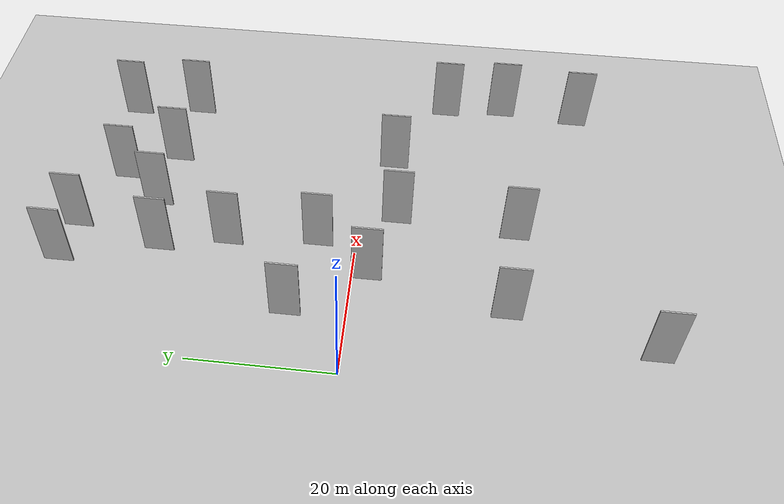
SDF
<?xml version="1.0" encoding="utf-8"?>

<sdf version="1.6">

   <world name="default">

      <gui fullscreen="0">

         <camera name="user_camera">

            <pose>-15 0 4.57585 0 0 0</pose>

            <view_controller>orbit</view_controller>

         </camera>

      </gui>

      <scene>

         <sky>

           <clouds>

             <speed>12</speed>

           </clouds>

         </sky>

         <ambient>0.4 0.4 0.4 1</ambient>

         <background>0.7 0.7 0.7 1</background>

         <shadows>1</shadows>

      </scene>

      <gravity>0 0 -9.8066</gravity>

      <magnetic_field>6e-06 2.3e-05 -4.2e-05</magnetic_field>

      <physics default="0" name="default_physics" type="ode">

         <ode>

            <solver>

               <type>quick</type>

               <iters>10</iters>

               <sor>1.0</sor>

               <use_dynamic_moi_rescaling>0</use_dynamic_moi_rescaling>

            </solver>

            <constraints>

               <cfm>0</cfm>

               <erp>0.2</erp>

               <contact_max_correcting_vel>100</contact_max_correcting_vel>

               <contact_surface_layer>0.001</contact_surface_layer>

            </constraints>

         </ode>

         <max_step_size>0.004</max_step_size>

         <real_time_factor>1</real_time_factor>

         <real_time_update_rate>250</real_time_update_rate>

      </physics>

      <light name="sun" type="directional">

         <cast_shadows>1</cast_shadows>

         <pose>0 0 10 0 0 0</pose>

         <diffuse>0.8 0.8 0.8 1</diffuse>

         <specular>0.2 0.2 0.2 1</specular>

         <attenuation>

            <range>1000</range>

            <constant>0.9</constant>

            <linear>0.01</linear>

            <quadratic>0.001</quadratic>

         </attenuation>

         <direction>-0.5 0.1 -0.9</direction>

      </light>

      <include>

         <name>ground_plane_1</name>

         <uri>model://HANNAS_ground_plane</uri>

         <pose>0 0 0  0 0 0</pose>

      </include>

      <include>

         <name>ground_plane_2</name>

         <uri>model://HANNAS_ground_plane</uri>

         <pose>100 0 0  0 0 0</pose>

      </include>

      <model name="HANNAS_wall_1">

         <static>1</static>

         <pose frame="">10.3924 38.5099 5.0 0.000000 0.000000 1.570796</pose>

         <link name="link">

            <pose frame="">0 0 5.00 0 0 0</pose>

            <collision name="collision">

               <geometry>

                  <box>

                     <size>4.00 0.2 10.00</size>

                  </box>

               </geometry>

               <max_contacts>10</max_contacts>

               <surface>

                  <contact>

                     <ode/>

                  </contact>

                  <bounce/>

                  <friction>

                     <torsional>

                        <ode/>

                     </torsional>

                     <ode/>

                  </friction>

               </surface>

            </collision>

            <visual name="visual">

               <cast_shadows>0</cast_shadows>

               <geometry>

                  <box>

                     <size>4.00 0.2 10.00</size>

                  </box>

               </geometry>

               <material>

                  <script>

                     <uri>model://HANNAS_wall/materials/scripts</uri>

                     <uri>model://HANNAS_wall/materials/textures</uri>

                     <name>vrc/HANNAS_wall</name>

                  </script>

               </material>

            </visual>

            <self_collide>0</self_collide>

            <enable_wind>0</enable_wind>

            <kinematic>0</kinematic>

         </link>

      </model>

      <model name="HANNAS_wall_2">

         <static>1</static>

         <pose frame="">26.3707 33.2354 5.0 0.000000 0.000000 1.570796</pose>

         <link name="link">

            <pose frame="">0 0 5.00 0 0 0</pose>

            <collision name="collision">

               <geometry>

                  <box>

                     <size>4.00 0.2 10.00</size>

                  </box>

               </geometry>

               <max_contacts>10</max_contacts>

               <surface>

                  <contact>

                     <ode/>

                  </contact>

                  <bounce/>

                  <friction>

                     <torsional>

                        <ode/>

                     </torsional>

                     <ode/>

                  </friction>

               </surface>

            </collision>

            <visual name="visual">

               <cast_shadows>0</cast_shadows>

               <geometry>

                  <box>

                     <size>4.00 0.2 10.00</size>

                  </box>

               </geometry>

               <material>

                  <script>

                     <uri>model://HANNAS_wall/materials/scripts</uri>

                     <uri>model://HANNAS_wall/materials/textures</uri>

                     <name>vrc/HANNAS_wall</name>

                  </script>

               </material>

            </visual>

            <self_collide>0</self_collide>

            <enable_wind>0</enable_wind>

            <kinematic>0</kinematic>

         </link>

      </model>

      <model name="HANNAS_wall_3">

         <static>1</static>

         <pose frame="">44.8564 -30.2030 5.0 0.000000 0.000000 1.570796</pose>

         <link name="link">

            <pose frame="">0 0 5.00 0 0 0</pose>

            <collision name="collision">

               <geometry>

                  <box>

                     <size>4.00 0.2 10.00</size>

                  </box>

               </geometry>

               <max_contacts>10</max_contacts>

               <surface>

                  <contact>

                     <ode/>

                  </contact>

                  <bounce/>

                  <friction>

                     <torsional>

                        <ode/>

                     </torsional>

                     <ode/>

                  </friction>

               </surface>

            </collision>

            <visual name="visual">

               <cast_shadows>0</cast_shadows>

               <geometry>

                  <box>

                     <size>4.00 0.2 10.00</size>

                  </box>

               </geometry>

               <material>

                  <script>

                     <uri>model://HANNAS_wall/materials/scripts</uri>

                     <uri>model://HANNAS_wall/materials/textures</uri>

                     <name>vrc/HANNAS_wall</name>

                  </script>

               </material>

            </visual>

            <self_collide>0</self_collide>

            <enable_wind>0</enable_wind>

            <kinematic>0</kinematic>

         </link>

      </model>

      <model name="HANNAS_wall_4">

         <static>1</static>

         <pose frame="">3.2372 -38.8629 5.0 0.000000 0.000000 1.570796</pose>

         <link name="link">

            <pose frame="">0 0 5.00 0 0 0</pose>

            <collision name="collision">

               <geometry>

                  <box>

                     <size>4.00 0.2 10.00</size>

                  </box>

               </geometry>

               <max_contacts>10</max_contacts>

               <surface>

                  <contact>

                     <ode/>

                  </contact>

                  <bounce/>

                  <friction>

                     <torsional>

                        <ode/>

                     </torsional>

                     <ode/>

                  </friction>

               </surface>

            </collision>

            <visual name="visual">

               <cast_shadows>0</cast_shadows>

               <geometry>

                  <box>

                     <size>4.00 0.2 10.00</size>

                  </box>

               </geometry>

               <material>

                  <script>

                     <uri>model://HANNAS_wall/materials/scripts</uri>

                     <uri>model://HANNAS_wall/materials/textures</uri>

                     <name>vrc/HANNAS_wall</name>

                  </script>

               </material>

            </visual>

            <self_collide>0</self_collide>

            <enable_wind>0</enable_wind>

            <kinematic>0</kinematic>

         </link>

      </model>

      <model name="HANNAS_wall_5">

         <static>1</static>

         <pose frame="">44.8452 -11.1819 5.0 0.000000 0.000000 1.570796</pose>

         <link name="link">

            <pose frame="">0 0 5.00 0 0 0</pose>

            <collision name="collision">

               <geometry>

                  <box>

                     <size>4.00 0.2 10.00</size>

                  </box>

               </geometry>

               <max_contacts>10</max_contacts>

               <surface>

                  <contact>

                     <ode/>

                  </contact>

                  <bounce/>

                  <friction>

                     <torsional>

                        <ode/>

                     </torsional>

                     <ode/>

                  </friction>

               </surface>

            </collision>

            <visual name="visual">

               <cast_shadows>0</cast_shadows>

               <geometry>

                  <box>

                     <size>4.00 0.2 10.00</size>

                  </box>

               </geometry>

               <material>

                  <script>

                     <uri>model://HANNAS_wall/materials/scripts</uri>

                     <uri>model://HANNAS_wall/materials/textures</uri>

                     <name>vrc/HANNAS_wall</name>

                  </script>

               </material>

            </visual>

            <self_collide>0</self_collide>

            <enable_wind>0</enable_wind>

            <kinematic>0</kinematic>

         </link>

      </model>

      <model name="HANNAS_wall_6">

         <static>1</static>

         <pose frame="">22.1076 -5.4832 5.0 0.000000 0.000000 1.570796</pose>

         <link name="link">

            <pose frame="">0 0 5.00 0 0 0</pose>

            <collision name="collision">

               <geometry>

                  <box>

                     <size>4.00 0.2 10.00</size>

                  </box>

               </geometry>

               <max_contacts>10</max_contacts>

               <surface>

                  <contact>

                     <ode/>

                  </contact>

                  <bounce/>

                  <friction>

                     <torsional>

                        <ode/>

                     </torsional>

                     <ode/>

                  </friction>

               </surface>

            </collision>

            <visual name="visual">

               <cast_shadows>0</cast_shadows>

               <geometry>

                  <box>

                     <size>4.00 0.2 10.00</size>

                  </box>

               </geometry>

               <material>

                  <script>

                     <uri>model://HANNAS_wall/materials/scripts</uri>

                     <uri>model://HANNAS_wall/materials/textures</uri>

                     <name>vrc/HANNAS_wall</name>

                  </script>

               </material>

            </visual>

            <self_collide>0</self_collide>

            <enable_wind>0</enable_wind>

            <kinematic>0</kinematic>

         </link>

      </model>

      <model name="HANNAS_wall_7">

         <static>1</static>

         <pose frame="">11.8245 -2.3541 5.0 0.000000 0.000000 1.570796</pose>

         <link name="link">

            <pose frame="">0 0 5.00 0 0 0</pose>

            <collision name="collision">

               <geometry>

                  <box>

                     <size>4.00 0.2 10.00</size>

                  </box>

               </geometry>

               <max_contacts>10</max_contacts>

               <surface>

                  <contact>

                     <ode/>

                  </contact>

                  <bounce/>

                  <friction>

                     <torsional>

                        <ode/>

                     </torsional>

                     <ode/>

                  </friction>

               </surface>

            </collision>

            <visual name="visual">

               <cast_shadows>0</cast_shadows>

               <geometry>

                  <box>

                     <size>4.00 0.2 10.00</size>

                  </box>

               </geometry>

               <material>

                  <script>

                     <uri>model://HANNAS_wall/materials/scripts</uri>

                     <uri>model://HANNAS_wall/materials/textures</uri>

                     <name>vrc/HANNAS_wall</name>

                  </script>

               </material>

            </visual>

            <self_collide>0</self_collide>

            <enable_wind>0</enable_wind>

            <kinematic>0</kinematic>

         </link>

      </model>

      <model name="HANNAS_wall_8">

         <static>1</static>

         <pose frame="">32.7218 -4.2951 5.0 0.000000 0.000000 1.570796</pose>

         <link name="link">

            <pose frame="">0 0 5.00 0 0 0</pose>

            <collision name="collision">

               <geometry>

                  <box>

                     <size>4.00 0.2 10.00</size>

                  </box>

               </geometry>

               <max_contacts>10</max_contacts>

               <surface>

                  <contact>

                     <ode/>

                  </contact>

                  <bounce/>

                  <friction>

                     <torsional>

                        <ode/>

                     </torsional>

                     <ode/>

                  </friction>

               </surface>

            </collision>

            <visual name="visual">

               <cast_shadows>0</cast_shadows>

               <geometry>

                  <box>

                     <size>4.00 0.2 10.00</size>

                  </box>

               </geometry>

               <material>

                  <script>

                     <uri>model://HANNAS_wall/materials/scripts</uri>

                     <uri>model://HANNAS_wall/materials/textures</uri>

                     <name>vrc/HANNAS_wall</name>

                  </script>

               </material>

            </visual>

            <self_collide>0</self_collide>

            <enable_wind>0</enable_wind>

            <kinematic>0</kinematic>

         </link>

      </model>

      <model name="HANNAS_wall_9">

         <static>1</static>

         <pose frame="">20.9511 -21.5772 5.0 0.000000 0.000000 1.570796</pose>

         <link name="link">

            <pose frame="">0 0 5.00 0 0 0</pose>

            <collision name="collision">

               <geometry>

                  <box>

                     <size>4.00 0.2 10.00</size>

                  </box>

               </geometry>

               <max_contacts>10</max_contacts>

               <surface>

                  <contact>

                     <ode/>

                  </contact>

                  <bounce/>

                  <friction>

                     <torsional>

                        <ode/>

                     </torsional>

                     <ode/>

                  </friction>

               </surface>

            </collision>

            <visual name="visual">

               <cast_shadows>0</cast_shadows>

               <geometry>

                  <box>

                     <size>4.00 0.2 10.00</size>

                  </box>

               </geometry>

               <material>

                  <script>

                     <uri>model://HANNAS_wall/materials/scripts</uri>

                     <uri>model://HANNAS_wall/materials/textures</uri>

                     <name>vrc/HANNAS_wall</name>

                  </script>

               </material>

            </visual>

            <self_collide>0</self_collide>

            <enable_wind>0</enable_wind>

            <kinematic>0</kinematic>

         </link>

      </model>

      <model name="HANNAS_wall_10">

         <static>1</static>

         <pose frame="">39.9970 35.2018 5.0 0.000000 0.000000 1.570796</pose>

         <link name="link">

            <pose frame="">0 0 5.00 0 0 0</pose>

            <collision name="collision">

               <geometry>

                  <box>

                     <size>4.00 0.2 10.00</size>

                  </box>

               </geometry>

               <max_contacts>10</max_contacts>

               <surface>

                  <contact>

                     <ode/>

                  </contact>

                  <bounce/>

                  <friction>

                     <torsional>

                        <ode/>

                     </torsional>

                     <ode/>

                  </friction>

               </surface>

            </collision>

            <visual name="visual">

               <cast_shadows>0</cast_shadows>

               <geometry>

                  <box>

                     <size>4.00 0.2 10.00</size>

                  </box>

               </geometry>

               <material>

                  <script>

                     <uri>model://HANNAS_wall/materials/scripts</uri>

                     <uri>model://HANNAS_wall/materials/textures</uri>

                     <name>vrc/HANNAS_wall</name>

                  </script>

               </material>

            </visual>

            <self_collide>0</self_collide>

            <enable_wind>0</enable_wind>

            <kinematic>0</kinematic>

         </link>

      </model>

      <model name="HANNAS_wall_11">

         <static>1</static>

         <pose frame="">16.6034 37.6472 5.0 0.000000 0.000000 1.570796</pose>

         <link name="link">

            <pose frame="">0 0 5.00 0 0 0</pose>

            <collision name="collision">

               <geometry>

                  <box>

                     <size>4.00 0.2 10.00</size>

                  </box>

               </geometry>

               <max_contacts>10</max_contacts>

               <surface>

                  <contact>

                     <ode/>

                  </contact>

                  <bounce/>

                  <friction>

                     <torsional>

                        <ode/>

                     </torsional>

                     <ode/>

                  </friction>

               </surface>

            </collision>

            <visual name="visual">

               <cast_shadows>0</cast_shadows>

               <geometry>

                  <box>

                     <size>4.00 0.2 10.00</size>

                  </box>

               </geometry>

               <material>

                  <script>

                     <uri>model://HANNAS_wall/materials/scripts</uri>

                     <uri>model://HANNAS_wall/materials/textures</uri>

                     <name>vrc/HANNAS_wall</name>

                  </script>

               </material>

            </visual>

            <self_collide>0</self_collide>

            <enable_wind>0</enable_wind>

            <kinematic>0</kinematic>

         </link>

      </model>

      <model name="HANNAS_wall_12">

         <static>1</static>

         <pose frame="">41.1932 25.7647 5.0 0.000000 0.000000 1.570796</pose>

         <link name="link">

            <pose frame="">0 0 5.00 0 0 0</pose>

            <collision name="collision">

               <geometry>

                  <box>

                     <size>4.00 0.2 10.00</size>

                  </box>

               </geometry>

               <max_contacts>10</max_contacts>

               <surface>

                  <contact>

                     <ode/>

                  </contact>

                  <bounce/>

                  <friction>

                     <torsional>

                        <ode/>

                     </torsional>

                     <ode/>

                  </friction>

               </surface>

            </collision>

            <visual name="visual">

               <cast_shadows>0</cast_shadows>

               <geometry>

                  <box>

                     <size>4.00 0.2 10.00</size>

                  </box>

               </geometry>

               <material>

                  <script>

                     <uri>model://HANNAS_wall/materials/scripts</uri>

                     <uri>model://HANNAS_wall/materials/textures</uri>

                     <name>vrc/HANNAS_wall</name>

                  </script>

               </material>

            </visual>

            <self_collide>0</self_collide>

            <enable_wind>0</enable_wind>

            <kinematic>0</kinematic>

         </link>

      </model>

      <model name="HANNAS_wall_13">

         <static>1</static>

         <pose frame="">30.7187 26.7996 5.0 0.000000 0.000000 1.570796</pose>

         <link name="link">

            <pose frame="">0 0 5.00 0 0 0</pose>

            <collision name="collision">

               <geometry>

                  <box>

                     <size>4.00 0.2 10.00</size>

                  </box>

               </geometry>

               <max_contacts>10</max_contacts>

               <surface>

                  <contact>

                     <ode/>

                  </contact>

                  <bounce/>

                  <friction>

                     <torsional>

                        <ode/>

                     </torsional>

                     <ode/>

                  </friction>

               </surface>

            </collision>

            <visual name="visual">

               <cast_shadows>0</cast_shadows>

               <geometry>

                  <box>

                     <size>4.00 0.2 10.00</size>

                  </box>

               </geometry>

               <material>

                  <script>

                     <uri>model://HANNAS_wall/materials/scripts</uri>

                     <uri>model://HANNAS_wall/materials/textures</uri>

                     <name>vrc/HANNAS_wall</name>

                  </script>

               </material>

            </visual>

            <self_collide>0</self_collide>

            <enable_wind>0</enable_wind>

            <kinematic>0</kinematic>

         </link>

      </model>

      <model name="HANNAS_wall_14">

         <static>1</static>

         <pose frame="">5.0376 7.3091 5.0 0.000000 0.000000 1.570796</pose>

         <link name="link">

            <pose frame="">0 0 5.00 0 0 0</pose>

            <collision name="collision">

               <geometry>

                  <box>

                     <size>4.00 0.2 10.00</size>

                  </box>

               </geometry>

               <max_contacts>10</max_contacts>

               <surface>

                  <contact>

                     <ode/>

                  </contact>

                  <bounce/>

                  <friction>

                     <torsional>

                        <ode/>

                     </torsional>

                     <ode/>

                  </friction>

               </surface>

            </collision>

            <visual name="visual">

               <cast_shadows>0</cast_shadows>

               <geometry>

                  <box>

                     <size>4.00 0.2 10.00</size>

                  </box>

               </geometry>

               <material>

                  <script>

                     <uri>model://HANNAS_wall/materials/scripts</uri>

                     <uri>model://HANNAS_wall/materials/textures</uri>

                     <name>vrc/HANNAS_wall</name>

                  </script>

               </material>

            </visual>

            <self_collide>0</self_collide>

            <enable_wind>0</enable_wind>

            <kinematic>0</kinematic>

         </link>

      </model>

      <model name="HANNAS_wall_15">

         <static>1</static>

         <pose frame="">45.6737 -19.4851 5.0 0.000000 0.000000 1.570796</pose>

         <link name="link">

            <pose frame="">0 0 5.00 0 0 0</pose>

            <collision name="collision">

               <geometry>

                  <box>

                     <size>4.00 0.2 10.00</size>

                  </box>

               </geometry>

               <max_contacts>10</max_contacts>

               <surface>

                  <contact>

                     <ode/>

                  </contact>

                  <bounce/>

                  <friction>

                     <torsional>

                        <ode/>

                     </torsional>

                     <ode/>

                  </friction>

               </surface>

            </collision>

            <visual name="visual">

               <cast_shadows>0</cast_shadows>

               <geometry>

                  <box>

                     <size>4.00 0.2 10.00</size>

                  </box>

               </geometry>

               <material>

                  <script>

                     <uri>model://HANNAS_wall/materials/scripts</uri>

                     <uri>model://HANNAS_wall/materials/textures</uri>

                     <name>vrc/HANNAS_wall</name>

                  </script>

               </material>

            </visual>

            <self_collide>0</self_collide>

            <enable_wind>0</enable_wind>

            <kinematic>0</kinematic>

         </link>

      </model>

      <model name="HANNAS_wall_16">

         <static>1</static>

         <pose frame="">7.5658 -20.5745 5.0 0.000000 0.000000 1.570796</pose>

         <link name="link">

            <pose frame="">0 0 5.00 0 0 0</pose>

            <collision name="collision">

               <geometry>

                  <box>

                     <size>4.00 0.2 10.00</size>

                  </box>

               </geometry>

               <max_contacts>10</max_contacts>

               <surface>

                  <contact>

                     <ode/>

                  </contact>

                  <bounce/>

                  <friction>

                     <torsional>

                        <ode/>

                     </torsional>

                     <ode/>

                  </friction>

               </surface>

            </collision>

            <visual name="visual">

               <cast_shadows>0</cast_shadows>

               <geometry>

                  <box>

                     <size>4.00 0.2 10.00</size>

                  </box>

               </geometry>

               <material>

                  <script>

                     <uri>model://HANNAS_wall/materials/scripts</uri>

                     <uri>model://HANNAS_wall/materials/textures</uri>

                     <name>vrc/HANNAS_wall</name>

                  </script>

               </material>

            </visual>

            <self_collide>0</self_collide>

            <enable_wind>0</enable_wind>

            <kinematic>0</kinematic>

         </link>

      </model>

      <model name="HANNAS_wall_17">

         <static>1</static>

         <pose frame="">16.8823 4.6486 5.0 0.000000 0.000000 1.570796</pose>

         <link name="link">

            <pose frame="">0 0 5.00 0 0 0</pose>

            <collision name="collision">

               <geometry>

                  <box>

                     <size>4.00 0.2 10.00</size>

                  </box>

               </geometry>

               <max_contacts>10</max_contacts>

               <surface>

                  <contact>

                     <ode/>

                  </contact>

                  <bounce/>

                  <friction>

                     <torsional>

                        <ode/>

                     </torsional>

                     <ode/>

                  </friction>

               </surface>

            </collision>

            <visual name="visual">

               <cast_shadows>0</cast_shadows>

               <geometry>

                  <box>

                     <size>4.00 0.2 10.00</size>

                  </box>

               </geometry>

               <material>

                  <script>

                     <uri>model://HANNAS_wall/materials/scripts</uri>

                     <uri>model://HANNAS_wall/materials/textures</uri>

                     <name>vrc/HANNAS_wall</name>

                  </script>

               </material>

            </visual>

            <self_collide>0</self_collide>

            <enable_wind>0</enable_wind>

            <kinematic>0</kinematic>

         </link>

      </model>

      <model name="HANNAS_wall_18">

         <static>1</static>

         <pose frame="">15.7420 16.6943 5.0 0.000000 0.000000 1.570796</pose>

         <link name="link">

            <pose frame="">0 0 5.00 0 0 0</pose>

            <collision name="collision">

               <geometry>

                  <box>

                     <size>4.00 0.2 10.00</size>

                  </box>

               </geometry>

               <max_contacts>10</max_contacts>

               <surface>

                  <contact>

                     <ode/>

                  </contact>

                  <bounce/>

                  <friction>

                     <torsional>

                        <ode/>

                     </torsional>

                     <ode/>

                  </friction>

               </surface>

            </collision>

            <visual name="visual">

               <cast_shadows>0</cast_shadows>

               <geometry>

                  <box>

                     <size>4.00 0.2 10.00</size>

                  </box>

               </geometry>

               <material>

                  <script>

                     <uri>model://HANNAS_wall/materials/scripts</uri>

                     <uri>model://HANNAS_wall/materials/textures</uri>

                     <name>vrc/HANNAS_wall</name>

                  </script>

               </material>

            </visual>

            <self_collide>0</self_collide>

            <enable_wind>0</enable_wind>

            <kinematic>0</kinematic>

         </link>

      </model>

      <model name="HANNAS_wall_19">

         <static>1</static>

         <pose frame="">21.7403 27.6944 5.0 0.000000 0.000000 1.570796</pose>

         <link name="link">

            <pose frame="">0 0 5.00 0 0 0</pose>

            <collision name="collision">

               <geometry>

                  <box>

                     <size>4.00 0.2 10.00</size>

                  </box>

               </geometry>

               <max_contacts>10</max_contacts>

               <surface>

                  <contact>

                     <ode/>

                  </contact>

                  <bounce/>

                  <friction>

                     <torsional>

                        <ode/>

                     </torsional>

                     <ode/>

                  </friction>

               </surface>

            </collision>

            <visual name="visual">

               <cast_shadows>0</cast_shadows>

               <geometry>

                  <box>

                     <size>4.00 0.2 10.00</size>

                  </box>

               </geometry>

               <material>

                  <script>

                     <uri>model://HANNAS_wall/materials/scripts</uri>

                     <uri>model://HANNAS_wall/materials/textures</uri>

                     <name>vrc/HANNAS_wall</name>

                  </script>

               </material>

            </visual>

            <self_collide>0</self_collide>

            <enable_wind>0</enable_wind>

            <kinematic>0</kinematic>

         </link>

      </model>

      <model name="HANNAS_wall_20">

         <static>1</static>

         <pose frame="">13.7105 25.6839 5.0 0.000000 0.000000 1.570796</pose>

         <link name="link">

            <pose frame="">0 0 5.00 0 0 0</pose>

            <collision name="collision">

               <geometry>

                  <box>

                     <size>4.00 0.2 10.00</size>

                  </box>

               </geometry>

               <max_contacts>10</max_contacts>

               <surface>

                  <contact>

                     <ode/>

                  </contact>

                  <bounce/>

                  <friction>

                     <torsional>

                        <ode/>

                     </torsional>

                     <ode/>

                  </friction>

               </surface>

            </collision>

            <visual name="visual">

               <cast_shadows>0</cast_shadows>

               <geometry>

                  <box>

                     <size>4.00 0.2 10.00</size>

                  </box>

               </geometry>

               <material>

                  <script>

                     <uri>model://HANNAS_wall/materials/scripts</uri>

                     <uri>model://HANNAS_wall/materials/textures</uri>

                     <name>vrc/HANNAS_wall</name>

                  </script>

               </material>

            </visual>

            <self_collide>0</self_collide>

            <enable_wind>0</enable_wind>

            <kinematic>0</kinematic>

         </link>

      </model>

   </world>

</sdf>

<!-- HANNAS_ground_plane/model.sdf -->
<sdf version="1.4">
<model name="HANNAS_ground_plane">
  <static>true</static>
    <link name="link">
      <collision name="collision">
        <geometry>
          <plane>
            <normal>0 0 1</normal>
            <size>1000 1000</size>
          </plane>
        </geometry>
        <surface>
          <friction>
            <ode>
              <mu>100</mu>
              <mu2>50</mu2>
            </ode>
          </friction>
        </surface>
      </collision>
      <visual name="visual">
        <cast_shadows>false</cast_shadows>
        <geometry>
          <plane>
            <normal>0 0 1</normal>
            <size>1000 1000</size>
          </plane>
        </geometry>
        <material>
          <script>
            <uri>model://HANNAS_ground_plane/materials/scripts/HANNAS_ground_plane.material</uri>
	    <uri>model://HANNAS_ground_plane/materials/textures</uri>
            <name>HANNASGroundPlane/Image</name>
          </script>
        </material>
      </visual>
    </link>
  </model>
</sdf>
